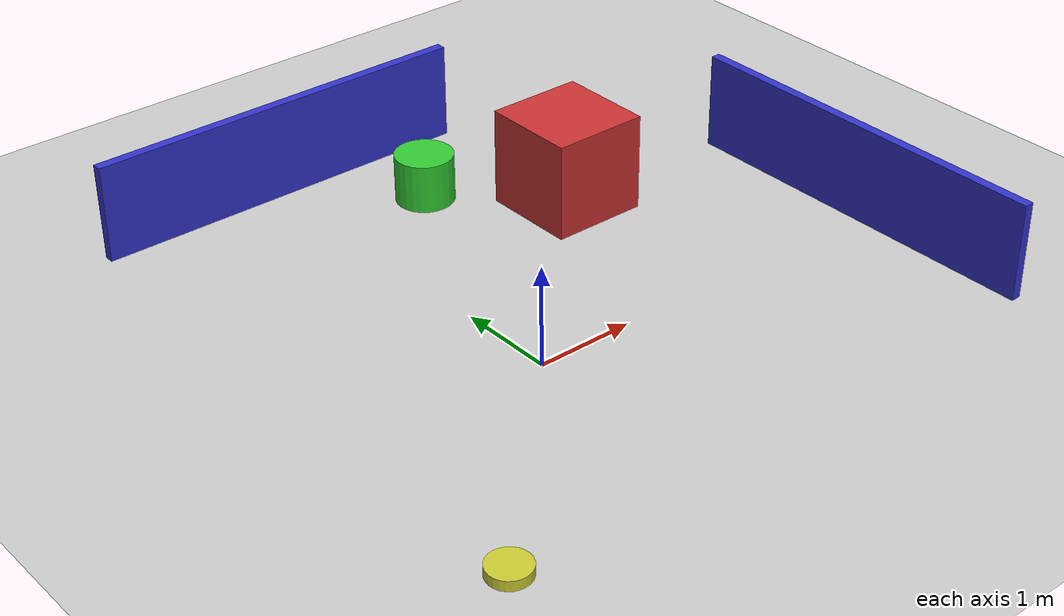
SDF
<?xml version="1.0" ?>
<sdf version="1.6">
  <world name="eos_test_world">

    <!-- Global illumination -->
    <include>
      <uri>model://sun</uri>
    </include>

    <!-- Ground plane -->
    <include>
      <uri>model://ground_plane</uri>
    </include>

    <!-- Testing environment with obstacles -->
    <model name="test_environment">
      <static>true</static>

      <!-- Central obstacle -->
      <link name="central_obstacle">
        <pose>2 2 0.5 0 0 0</pose>
        <collision name="collision">
          <geometry>
            <box>
              <size>1 1 1</size>
            </box>
          </geometry>
        </collision>
        <visual name="visual">
          <geometry>
            <box>
              <size>1 1 1</size>
            </box>
          </geometry>
          <material>
            <ambient>0.8 0.2 0.2 1</ambient>
            <diffuse>0.8 0.2 0.2 1</diffuse>
          </material>
        </visual>
      </link>

      <!-- Wall obstacles for navigation testing -->
      <link name="wall_1">
        <pose>4 0 0.5 0 0 1.57</pose>
        <collision name="collision">
          <geometry>
            <box>
              <size>4 0.1 1</size>
            </box>
          </geometry>
        </collision>
        <visual name="visual">
          <geometry>
            <box>
              <size>4 0.1 1</size>
            </box>
          </geometry>
          <material>
            <ambient>0.2 0.2 0.8 1</ambient>
            <diffuse>0.2 0.2 0.8 1</diffuse>
          </material>
        </visual>
      </link>

      <link name="wall_2">
        <pose>0 4 0.5 0 0 0</pose>
        <collision name="collision">
          <geometry>
            <box>
              <size>4 0.1 1</size>
            </box>
          </geometry>
        </collision>
        <visual name="visual">
          <geometry>
            <box>
              <size>4 0.1 1</size>
            </box>
          </geometry>
          <material>
            <ambient>0.2 0.2 0.8 1</ambient>
            <diffuse>0.2 0.2 0.8 1</diffuse>
          </material>
        </visual>
      </link>

      <!-- Dynamic obstacle for testing adaptation -->
      <model name="moving_obstacle">
        <pose>1 3 0.25 0 0 0</pose>
        <link name="link">
          <collision name="collision">
            <geometry>
              <cylinder>
                <radius>0.3</radius>
                <length>0.5</length>
              </cylinder>
            </geometry>
          </collision>
          <visual name="visual">
            <geometry>
              <cylinder>
                <radius>0.3</radius>
                <length>0.5</length>
              </cylinder>
            </geometry>
            <material>
              <ambient>0.2 0.8 0.2 1</ambient>
              <diffuse>0.2 0.8 0.2 1</diffuse>
            </material>
          </visual>
        </link>

        <!-- Simple periodic motion -->
        <plugin name="move_obstacle" filename="libgazebo_ros_planar_move.so">
          <frame_id>moving_obstacle/link</frame_id>
          <robot_namespace>moving_obstacle</robot_namespace>
          <publish_odometry>false</publish_odometry>
          <publish_odometry_tf>false</publish_odometry_tf>
        </plugin>
      </model>

    </model>

    <!-- Navigation goal markers -->
    <model name="goal_marker_1">
      <pose>3 3 0.1 0 0 0</pose>
      <static>true</static>
      <link name="link">
        <visual name="visual">
          <geometry>
            <cylinder>
              <radius>0.2</radius>
              <length>0.1</length>
            </cylinder>
          </geometry>
          <material>
            <ambient>0.8 0.8 0.2 1</ambient>
            <diffuse>0.8 0.8 0.2 1</diffuse>
          </material>
        </visual>
      </link>
    </model>

    <model name="goal_marker_2">
      <pose>-2 -2 0.1 0 0 0</pose>
      <static>true</static>
      <link name="link">
        <visual name="visual">
          <geometry>
            <cylinder>
              <radius>0.2</radius>
              <length>0.1</length>
            </cylinder>
          </geometry>
          <material>
            <ambient>0.8 0.8 0.2 1</ambient>
            <diffuse>0.8 0.8 0.2 1</diffuse>
          </material>
        </visual>
      </link>
    </model>

    <!-- Physics engine configuration -->
    <physics type="ode">
      <max_step_size>0.001</max_step_size>
      <real_time_factor>1</real_time_factor>
      <real_time_update_rate>1000</real_time_update_rate>
    </physics>

    <!-- Scene configuration -->
    <scene>
      <ambient>0.4 0.4 0.4 1</ambient>
      <background>0.7 0.7 0.7 1</background>
      <shadows>true</shadows>
    </scene>

    <!-- GUI configuration -->
    <gui fullscreen='0'>
      <camera name='user_camera'>
        <pose frame=''>5 -5 2 0 0.5 2.35</pose>
        <view_controller>orbit</view_controller>
        <projection_type>perspective</projection_type>
      </camera>
    </gui>

  </world>
</sdf>
